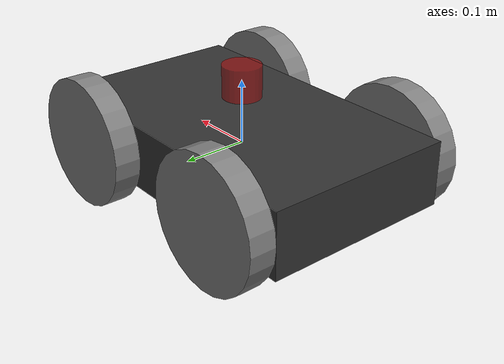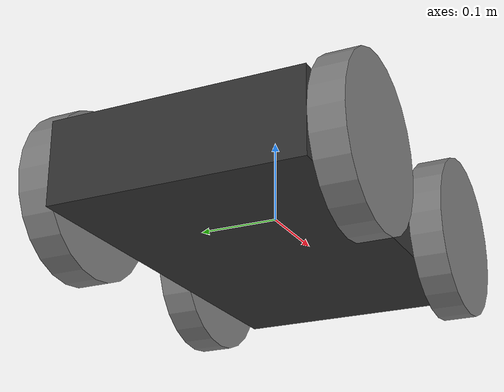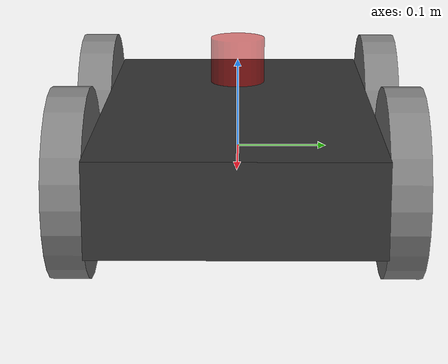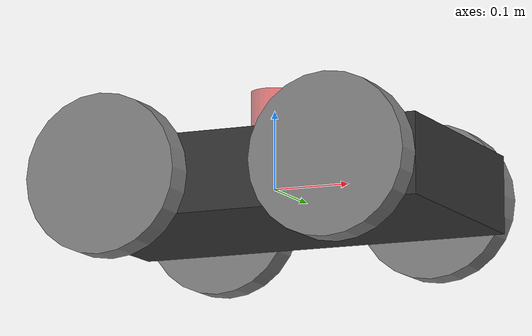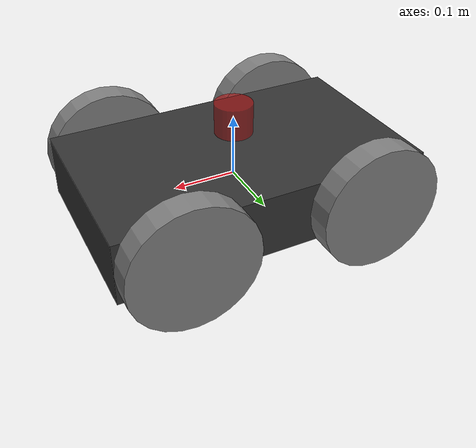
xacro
<?xml version="1.0"?>
<robot name="argus" xmlns:xacro="http://www.ros.org/wiki/xacro">

  <!-- ############ GLOBAL PREFIX ############ -->
  <xacro:property name="prefix" value=""/>

  <!-- ############ MATERIALS ############ -->
  <material name="blue"><color rgba="0 0 0.8 1.0"/></material>
  <material name="translucent_red"><color rgba="0.8 0 0 0.5"/></material>
  <material name="steel_blue"><color rgba="0.27 0.51 0.71 1.0"/></material>
  <material name="grey"><color rgba="0.5 0.5 0.5 1.0"/></material>
  <material name="chassis_color"><color rgba="0.2 0.2 0.2 1.0"/></material>

  <!-- ############ WHEEL MACRO ############ -->
  <xacro:property name="wheel_radius" value="0.1"/>
  <xacro:property name="wheel_height" value="0.04"/>
  <xacro:property name="wheel_mass" value="0.5"/>

<xacro:macro name="wheel" params="prefix parent=''">
    <link name="${prefix}_wheel_link">
      <visual>
        <geometry>
          <cylinder radius="${wheel_radius}" length="${wheel_height}"/>
        </geometry>
        <material name="grey"/>
        <origin rpy="1.5708 0 0"/>
      </visual>
      <collision>
        <geometry>
          <cylinder radius="${wheel_radius}" length="${wheel_height}"/>
        </geometry>
        <origin rpy="1.5708 0 0"/>
      </collision>
      <inertial>
        <mass value="${wheel_mass}"/>
        <inertia ixx="0.001" ixy="0" ixz="0" iyy="0.001" iyz="0" izz="0.001"/>
        <origin rpy="1.5708 0 0"/>
      </inertial>
    </link>

    <joint name="${prefix}_wheel_joint" type="continuous">
      <parent link="${parent}"/>
      <child link="${prefix}_wheel_link"/>
      <origin xyz="0 0 0" rpy="0 0 0"/>
      <axis xyz="0 1 0"/>
    </joint>

    <gazebo reference="${prefix}_wheel_link">
        <material>Gazebo/Grey</material>
        <mu1>1.0</mu1>
        <mu2>1.0</mu2>
        <kp>100000</kp>
        <kd>1</kd>
    </gazebo>
</xacro:macro>

  <!-- ############ BASE LINK ############ -->
  <link name="base_link">
    <visual>
      <geometry><box size="0.5 0.3 0.1"/></geometry>
      <material name="chassis_color"/>
    </visual>
    <collision>
      <geometry><box size="0.5 0.3 0.1"/></geometry>
    </collision>
    <inertial>
      <mass value="5.0"/>
      <inertia ixx="0.1" ixy="0" ixz="0" iyy="0.2" iyz="0" izz="0.15"/>
    </inertial>
  </link>

  <gazebo reference="base_link">
    <gravity>true</gravity>
    <material>
      <ambient>0.2 0.2 0.2 1</ambient>
      <diffuse>0.2 0.2 0.2 1</diffuse>
      <specular>0.2 0.2 0.2 1</specular>
    </material>
  </gazebo>

  <!-- ############ WHEEL MOUNTS ############ -->
  <link name="front_left_mount"/>
  <link name="front_right_mount"/>
  <link name="rear_left_mount"/>
  <link name="rear_right_mount"/>

  <joint name="front_left_mount_joint" type="fixed">
    <parent link="base_link"/><child link="front_left_mount"/>
    <origin xyz="0.15 0.17 0"/>
    <geometry><box size="0.02 0.02 0.02"/></geometry>
  </joint>

  <joint name="front_right_mount_joint" type="fixed">
    <parent link="base_link"/><child link="front_right_mount"/>
    <origin xyz="0.15 -0.17 0"/>
    <geometry><box size="0.02 0.02 0.02"/></geometry>
  </joint>

  <joint name="rear_left_mount_joint" type="fixed">
    <parent link="base_link"/><child link="rear_left_mount"/>
    <origin xyz="-0.15 0.17 0"/>
    <geometry><box size="0.02 0.02 0.02"/></geometry>
  </joint>

  <joint name="rear_right_mount_joint" type="fixed">
    <parent link="base_link"/><child link="rear_right_mount"/>
    <origin xyz="-0.15 -0.17 0"/>
    <geometry><box size="0.02 0.02 0.02"/></geometry>
  </joint>

  <!-- ############ ATTACH WHEELS ############ -->
  <xacro:wheel prefix="front_left" parent="front_left_mount"/>
  <xacro:wheel prefix="front_right" parent="front_right_mount"/>
  <xacro:wheel prefix="rear_left" parent="rear_left_mount"/>
  <xacro:wheel prefix="rear_right" parent="rear_right_mount"/>

  <!-- ############ GAZEBO SKID STEER PLUGIN ############ -->
  <gazebo>
    <plugin name="skid_steer_drive_controller" filename="libgazebo_ros_skid_steer_drive.so">
      <updateRate>25.0</updateRate>
      <broadcastTF>true</broadcastTF>
      <leftFrontJoint>front_left_wheel_joint</leftFrontJoint>
      <rightFrontJoint>front_right_wheel_joint</rightFrontJoint>
      <leftRearJoint>rear_left_wheel_joint</leftRearJoint>
      <rightRearJoint>rear_right_wheel_joint</rightRearJoint>
      <wheelSeparation>0.34</wheelSeparation>
      <wheelDiameter>0.1</wheelDiameter>
      <robotBaseFrame>base_link</robotBaseFrame>
      <commandTopic>cmd_vel</commandTopic>
      <odometryTopic>odom</odometryTopic>
      <odometryFrame>odom</odometryFrame>
      <torque>20</torque>
    </plugin>
  </gazebo>

  <!-- ############ LIDAR PLUGIN ############ -->
  <link name="laser_link">
    <visual>
      <geometry><cylinder radius="0.03" length="0.05"/></geometry>
      <material name="translucent_red"/>
    </visual>
    <collision>
      <geometry><cylinder radius="0.03" length="0.05"/></geometry>
    </collision>
    <inertial>
      <mass value="0.1"/>
      <inertia ixx="0.0001" ixy="0" ixz="0" iyy="0.0001" iyz="0" izz="0.0001"/>
    </inertial>
  </link>

  <joint name="laser_joint" type="fixed">
    <parent link="base_link"/>
    <child link="laser_link"/>
    <origin xyz="0 0 0.1" rpy="0 0 0"/>
  </joint>

  <gazebo reference="laser_link">
    <sensor type="ray" name="head_hokuyo_sensor">
      <pose>0 0 0 0 0 0</pose>
      <visualize>true</visualize>
      <update_rate>20</update_rate>
      <ray>
        <scan>
          <horizontal>
            <samples>720</samples>
            <resolution>1</resolution>
            <min_angle>-1.570796</min_angle>
            <max_angle>1.570796</max_angle>
          </horizontal>
        </scan>
        <range>
          <min>0.10</min>
          <max>10.0</max>
          <resolution>0.01</resolution>
        </range>
        <noise>
          <type>gaussian</type>
          <mean>0.0</mean>
          <stddev>0.01</stddev>
        </noise>
      </ray>
      <plugin name="gazebo_ros_head_hokuyo_controller" filename="libgazebo_ros_laser.so">
        <topicName>/scan</topicName>
        <frameName>laser_link</frameName>
      </plugin>
    </sensor>
  </gazebo>

</robot>
